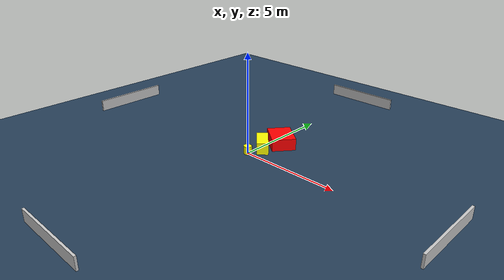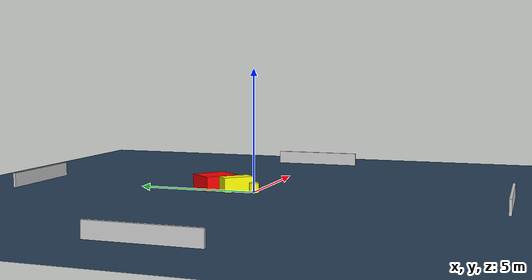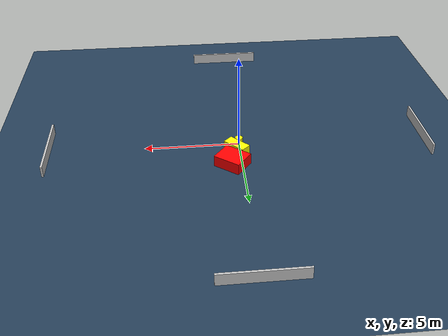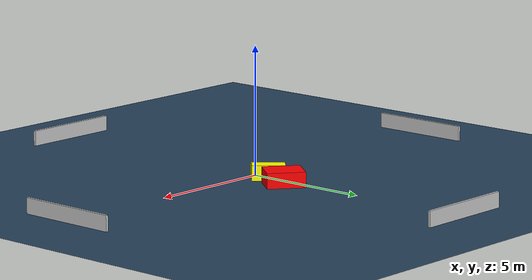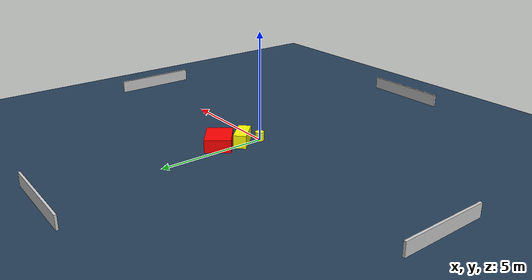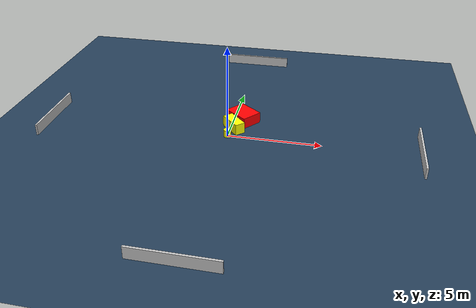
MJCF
<?xml version="1.0" ?>
<mujoco model="generated_environment">
  <option timestep="0.01" integrator="RK4" cone="elliptic"/>
  <default>
    <geom density="1"/>
  </default>
  <asset>
    <texture builtin="gradient" height="3072" name="skybox" rgb1="0.3 0.5 0.7" rgb2="0 0 0" type="skybox" width="512"/>
    <texture builtin="checker" height="300" name="groundplane" rgb1="0.2 0.3 0.4" rgb2="0.1 0.2 0.3" type="2d" width="300"/>
    <material name="groundplane" reflectance="0.2" texrepeat="5 5" texture="groundplane"/>
  </asset>
  <worldbody>
    <light dir="0 0 -1" directional="true" pos="0 0 1.5"/>
    <geom condim="3" friction="0.5 0.005 0.001" material="groundplane" name="floor" pos="0 0 0" size="0 0 0.05" type="plane"/>
    <body name="walls">
      <geom name="wall_1" condim="4" pos="-10.0 0.0 0.3" rgba="0.800000011920929 0.800000011920929 0.800000011920929 1.0" size="0.05 2.0 0.3" type="box"/>
      <geom name="wall_2" condim="4" pos="10.0 0.0 0.3" rgba="0.800000011920929 0.800000011920929 0.800000011920929 1.0" size="0.05 2.0 0.3" type="box"/>
      <geom name="wall_3" condim="4" pos="0.0 -10.0 0.3" rgba="0.800000011920929 0.800000011920929 0.800000011920929 1.0" size="2.0 0.05 0.3" type="box"/>
      <geom name="wall_4" condim="4" pos="0.0 10.0 0.3" rgba="0.800000011920929 0.800000011920929 0.800000011920929 1.0" size="2.0 0.05 0.3" type="box"/>
    </body>
    <body name="robot">
      <joint name="joint_x" type="slide" pos="0 0 0" axis="1 0 0"/>
      <joint name="joint_y" type="slide" pos="0 0 0" axis="0 1 0"/>
      <geom name="robot" type="cylinder" pos="0.0 0.0 0.2" size="0.2 0.2 0.0" mass="5.0" friction="1.0 0.005 0.0001" condim="4" rgba="1.0 1.0 0.0 1.0"/>
    </body>
    <body name="obstacle_1_movable">
      <geom name="obstacle_1_movable" condim="4" pos="0.19037230769267638 0.8295521975478704 0.3" euler="0 0 313.60063247016586" friction="0.0 0.005 0.001" rgba="1.0 1.0 0.0 1.0" size="0.639831962565435 0.287830713569413 0.3" type="box" mass="0.1"/>
      <joint type="free"/>
    </body>
    <body name="obstacle_2_static">
      <geom name="obstacle_2_static" condim="4" pos="0.5100820316486491 1.8740743813545548 0.3" euler="0 0 321.9125182806236" friction="0.0 0.005 0.001" rgba="1.0 0.0 0.0 1.0" size="0.7363442259203485 0.5915063185195819 0.3" type="box"/>
    </body>
  </worldbody>
  <actuator>
    <motor name="actuator_x" joint="joint_x" gear="1" ctrlrange="-1 1"/>
    <motor name="actuator_y" joint="joint_y" gear="1" ctrlrange="-1 1"/>
  </actuator>
</mujoco>
